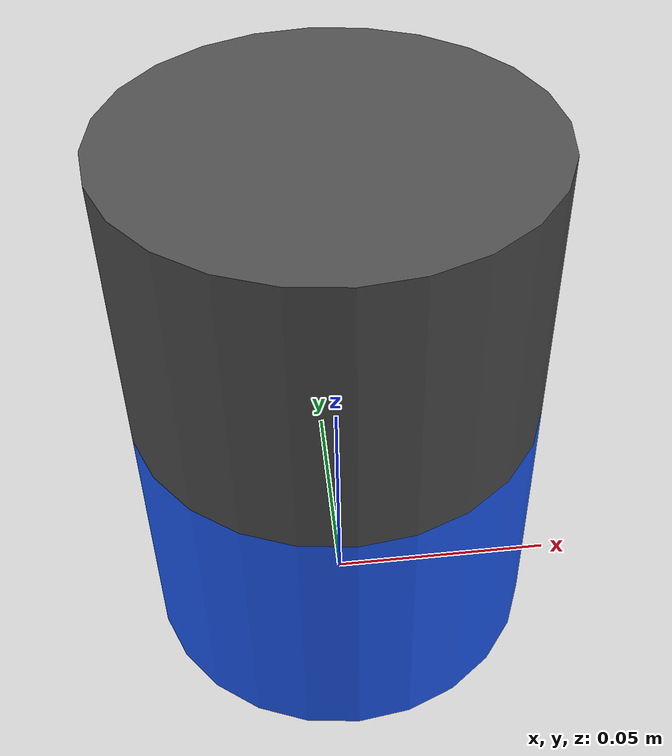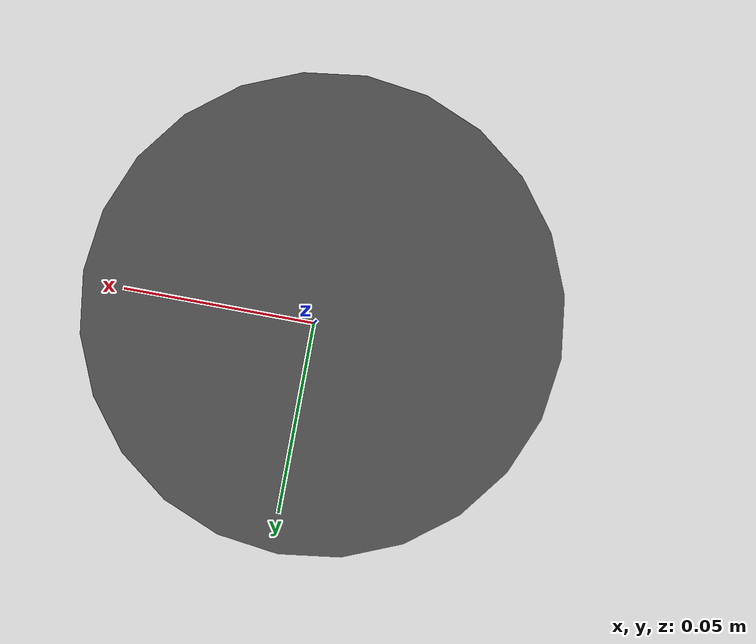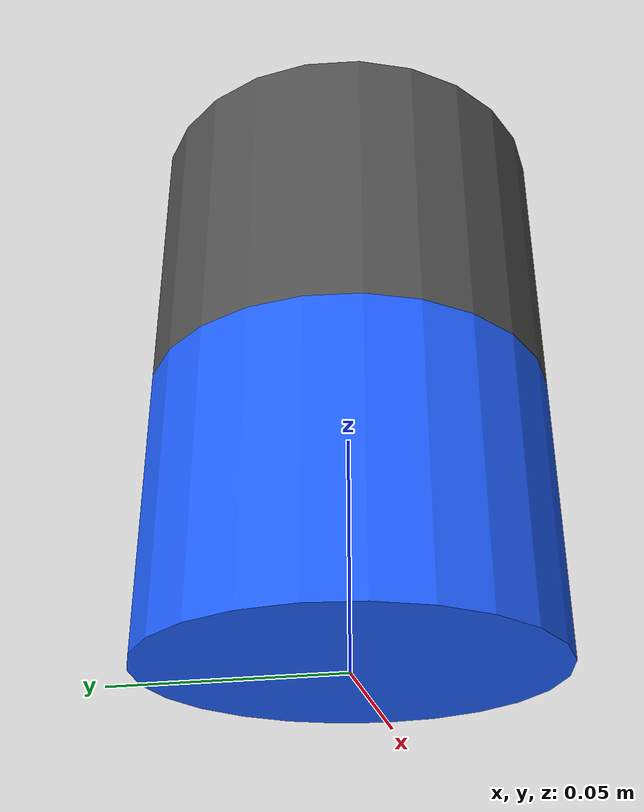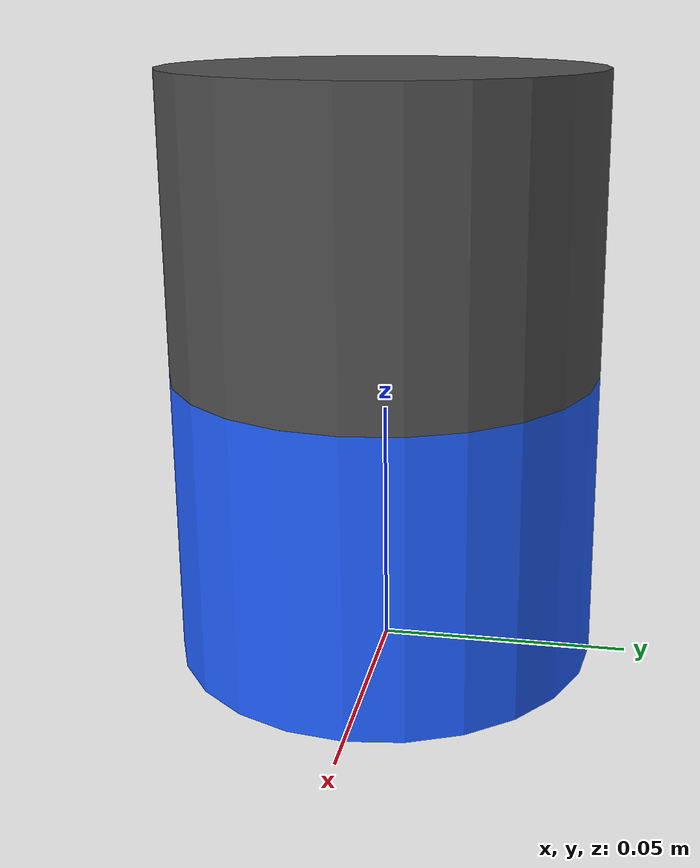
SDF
<sdf version='1.11'>
  <model name='SF45B_lidar'>
    <link name='base'>
      <inertial>
        <pose>0 0 0.029335 0 0 0</pose>
        <mass>1.2</mass>
        <inertia>
          <ixx>0.001087473</ixx>
          <ixy>0</ixy>
          <ixz>0</ixz>
          <iyy>0.001087473</iyy>
          <iyz>0</iyz>
          <izz>0.0010924369999999999</izz>
        </inertia>
      </inertial>
      <collision name='base_collision_collision'>
        <pose>0 0 0.029335 0 0 0</pose>
        <geometry>
          <cylinder>
            <length>0.05867</length>
            <radius>0.04267</radius>
          </cylinder>
        </geometry>
      </collision>
      <visual name='base_visual_visual'>
        <pose>0 0 0.029335 0 0 0</pose>
        <geometry>
          <cylinder>
            <length>0.05867</length>
            <radius>0.04267</radius>
          </cylinder>
        </geometry>
        <material>
          <diffuse>0.125 0.37500003 1 1</diffuse>
          <ambient>0.125 0.37500003 1 1</ambient>
        </material>
      </visual>
    </link>
    <joint name='joint' type='revolute'>
      <pose relative_to='base'>0 0 0.088005 0 0 0</pose>
      <parent>base</parent>
      <child>top</child>
      <axis>
        <xyz>0 0 1</xyz>
        <limit>
          <effort>10</effort>
          <velocity>6.2800000000000002</velocity>
          <lower>-inf</lower>
          <upper>inf</upper>
        </limit>
        <dynamics>
          <spring_reference>0</spring_reference>
          <spring_stiffness>0</spring_stiffness>
        </dynamics>
      </axis>
    </joint>
    <link name='top'>
      <pose relative_to='joint'>0 0 0 0 0 0</pose>
      <inertial>
        <pose>0 0 0 0 0 0</pose>
        <mass>0.10000000000000001</mass>
        <inertia>
          <ixx>9.0623000000000003e-05</ixx>
          <ixy>0</ixy>
          <ixz>0</ixz>
          <iyy>9.0623000000000003e-05</iyy>
          <iyz>0</iyz>
          <izz>9.1036e-05</izz>
        </inertia>
      </inertial>
      <collision name='top_collision_collision'>
        <pose>0 0 0 0 0 0</pose>
        <geometry>
          <cylinder>
            <length>0.05867</length>
            <radius>0.04267</radius>
          </cylinder>
        </geometry>
        <surface>
          <contact>
            <ode/>
          </contact>
          <friction>
            <ode/>
          </friction>
        </surface>
      </collision>
      <visual name='top_visual_visual'>
        <pose>0 0 0 0 0 0</pose>
        <geometry>
          <cylinder>
            <length>0.05867</length>
            <radius>0.04267</radius>
          </cylinder>
        </geometry>
        <material>
          <diffuse>0.3125 0.3125 0.3125 1</diffuse>
          <ambient>0.3125 0.3125 0.3125 1</ambient>
        </material>
      </visual>
      <sensor name='gpu_lidar_sensor' type='gpu_lidar'>
        <pose relative_to='top'>0 0 0 0 0 0</pose>
        <visualize>true</visualize>
        <always_on>true</always_on>
        <update_rate>10</update_rate>
        <topic>scan</topic>
        <lidar>
          <scan>
            <horizontal>
              <samples>720</samples>
              <resolution>1</resolution>
              <min_angle>-3.1415926535900001</min_angle>
              <max_angle>3.1415926535900001</max_angle>
            </horizontal>
            <vertical>
              <samples>32</samples>
              <resolution>1</resolution>
              <min_angle>-0.53529247999999996</min_angle>
              <max_angle>0.18622663</max_angle>
            </vertical>
          </scan>
          <range>
            <min>0.050000000000000003</min>
            <max>50</max>
            <resolution>0.02</resolution>
          </range>
          <noise>
            <type>gaussian</type>
            <mean>0</mean>
            <stddev>0.01</stddev>
          </noise>
        </lidar>
      </sensor>
    </link>
    <plugin name='gz::sim::systems::Sensors' filename='gz-sim-sensors-system'>
      <render_engine>ogre2</render_engine>
    </plugin>
  </model>
</sdf>
